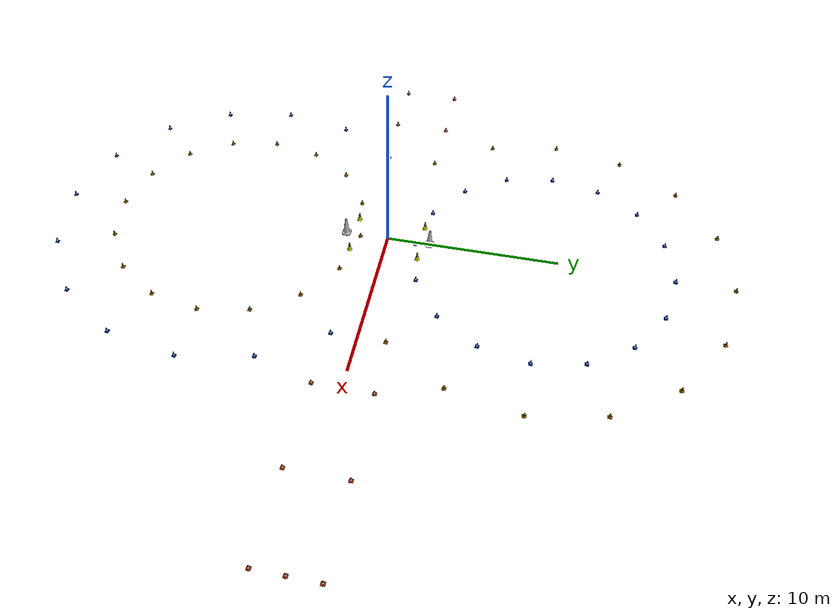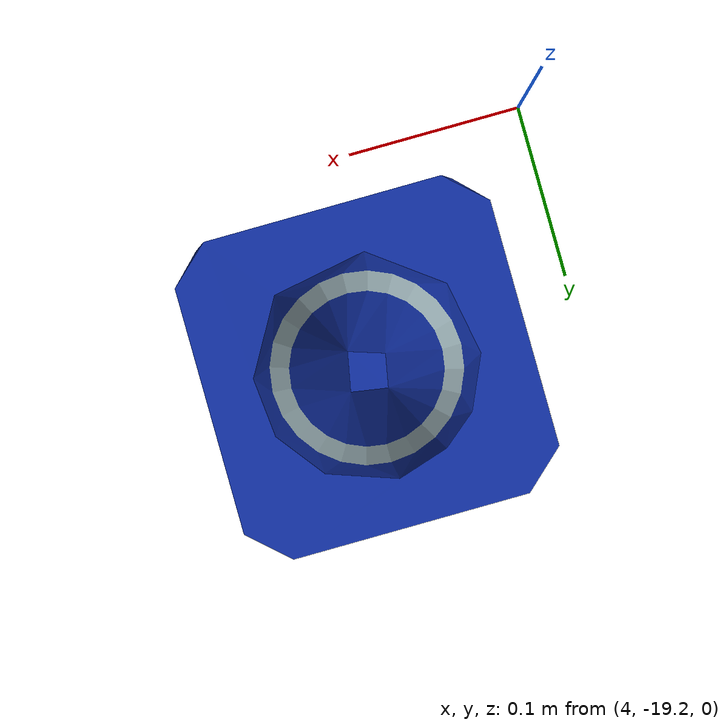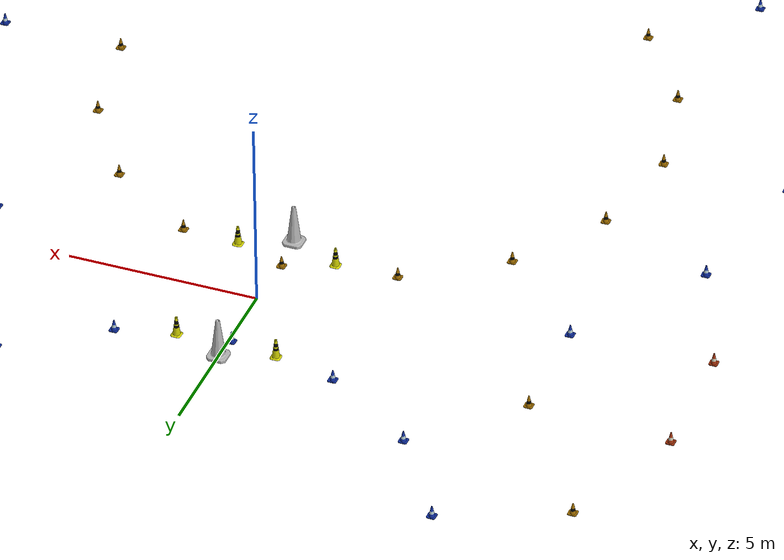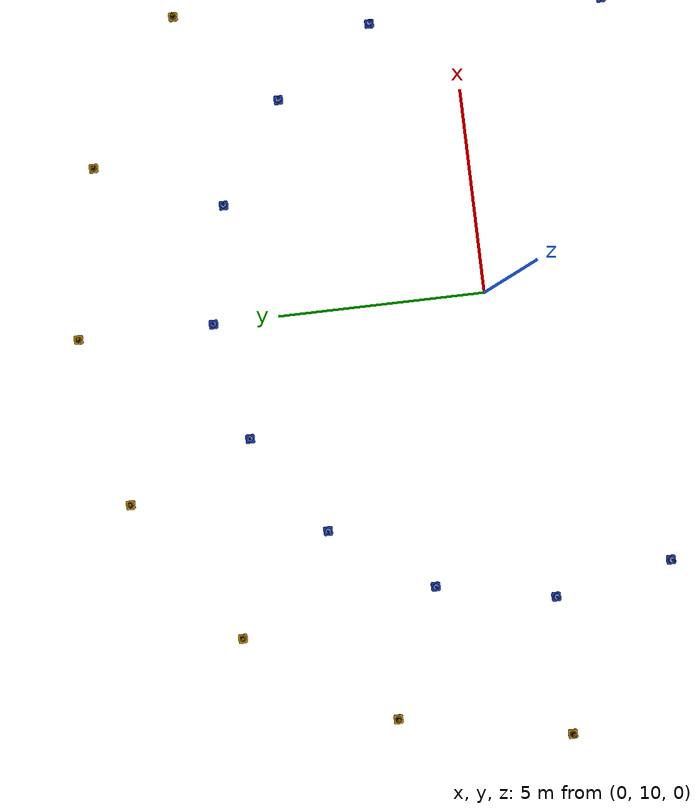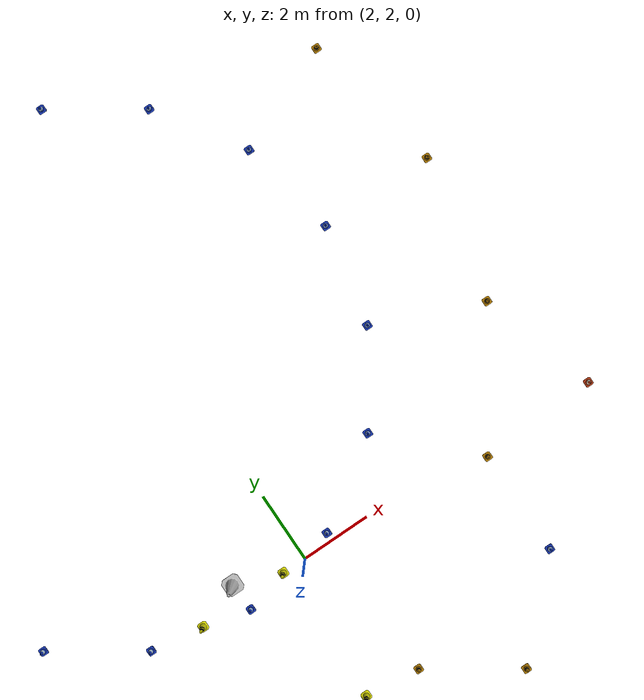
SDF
<sdf version="1.4">
  <model name="some track">
    <include>
      <uri>model://fssim_gazebo/models/cone_blue</uri>
      <pose>-0.0 1.6500000000000004 0 0 0 0</pose>
      <name>cone_right0</name>
    </include>
    <include>
      <uri>model://fssim_gazebo/models/cone_blue</uri>
      <pose>-2.860558656929046 2.2190004944781316 0 0 0 0</pose>
      <name>cone_right1</name>
    </include>
    <include>
      <uri>model://fssim_gazebo/models/cone_blue</uri>
      <pose>-5.285623189369442 3.839376810630557 0 0 0 0</pose>
      <name>cone_right2</name>
    </include>
    <include>
      <uri>model://fssim_gazebo/models/cone_blue</uri>
      <pose>-6.905999505521868 6.264441343070954 0 0 0 0</pose>
      <name>cone_right3</name>
    </include>
    <include>
      <uri>model://fssim_gazebo/models/cone_blue</uri>
      <pose>-7.475 9.125 0 0 0 0</pose>
      <name>cone_right4</name>
    </include>
    <include>
      <uri>model://fssim_gazebo/models/cone_blue</uri>
      <pose>-6.905999505521868 11.985558656929046 0 0 0 0</pose>
      <name>cone_right5</name>
    </include>
    <include>
      <uri>model://fssim_gazebo/models/cone_blue</uri>
      <pose>-5.285623189369443 14.410623189369442 0 0 0 0</pose>
      <name>cone_right6</name>
    </include>
    <include>
      <uri>model://fssim_gazebo/models/cone_blue</uri>
      <pose>-2.860558656929047 16.03099950552187 0 0 0 0</pose>
      <name>cone_right7</name>
    </include>
    <include>
      <uri>model://fssim_gazebo/models/cone_blue</uri>
      <pose>-9.154234823626465e-16 16.6 0 0 0 0</pose>
      <name>cone_right8</name>
    </include>
    <include>
      <uri>model://fssim_gazebo/models/cone_blue</uri>
      <pose>2.860558656929045 16.03099950552187 0 0 0 0</pose>
      <name>cone_right9</name>
    </include>
    <include>
      <uri>model://fssim_gazebo/models/cone_blue</uri>
      <pose>5.285623189369442 14.410623189369444 0 0 0 0</pose>
      <name>cone_right10</name>
    </include>
    <include>
      <uri>model://fssim_gazebo/models/cone_blue</uri>
      <pose>6.905999505521867 11.98555865692905 0 0 0 0</pose>
      <name>cone_right11</name>
    </include>
    <include>
      <uri>model://fssim_gazebo/models/cone_blue</uri>
      <pose>7.475 9.125000000000002 0 0 0 0</pose>
      <name>cone_right12</name>
    </include>
    <include>
      <uri>model://fssim_gazebo/models/cone_blue</uri>
      <pose>6.9059995055218675 6.264441343070953 0 0 0 0</pose>
      <name>cone_right13</name>
    </include>
    <include>
      <uri>model://fssim_gazebo/models/cone_blue</uri>
      <pose>5.285623189369444 3.839376810630559 0 0 0 0</pose>
      <name>cone_right14</name>
    </include>
    <include>
      <uri>model://fssim_gazebo/models/cone_blue</uri>
      <pose>2.8605586569290504 2.2190004944781334 0 0 0 0</pose>
      <name>cone_right15</name>
    </include>
    <include>
      <uri>model://fssim_gazebo/models/cone_blue</uri>
      <pose>7.619075567285049 -1.5059244327149495 0 0 0 0</pose>
      <name>cone_right16</name>
    </include>
    <include>
      <uri>model://fssim_gazebo/models/cone_blue</uri>
      <pose>9.954801962809116 -5.001586016266157 0 0 0 0</pose>
      <name>cone_right17</name>
    </include>
    <include>
      <uri>model://fssim_gazebo/models/cone_blue</uri>
      <pose>10.775 -9.125 0 0 0 0</pose>
      <name>cone_right18</name>
    </include>
    <include>
      <uri>model://fssim_gazebo/models/cone_blue</uri>
      <pose>9.954801962809116 -13.248413983733842 0 0 0 0</pose>
      <name>cone_right19</name>
    </include>
    <include>
      <uri>model://fssim_gazebo/models/cone_blue</uri>
      <pose>7.6190755672850505 -16.744075567285048 0 0 0 0</pose>
      <name>cone_right20</name>
    </include>
    <include>
      <uri>model://fssim_gazebo/models/cone_blue</uri>
      <pose>4.123413983733844 -19.079801962809114 0 0 0 0</pose>
      <name>cone_right21</name>
    </include>
    <include>
      <uri>model://fssim_gazebo/models/cone_blue</uri>
      <pose>1.3195569260812732e-15 -19.9 0 0 0 0</pose>
      <name>cone_right22</name>
    </include>
    <include>
      <uri>model://fssim_gazebo/models/cone_blue</uri>
      <pose>-4.123413983733841 -19.079801962809114 0 0 0 0</pose>
      <name>cone_right23</name>
    </include>
    <include>
      <uri>model://fssim_gazebo/models/cone_blue</uri>
      <pose>-7.619075567285049 -16.74407556728505 0 0 0 0</pose>
      <name>cone_right24</name>
    </include>
    <include>
      <uri>model://fssim_gazebo/models/cone_blue</uri>
      <pose>-9.954801962809112 -13.248413983733847 0 0 0 0</pose>
      <name>cone_right25</name>
    </include>
    <include>
      <uri>model://fssim_gazebo/models/cone_blue</uri>
      <pose>-10.775 -9.125000000000002 0 0 0 0</pose>
      <name>cone_right26</name>
    </include>
    <include>
      <uri>model://fssim_gazebo/models/cone_blue</uri>
      <pose>-9.954801962809114 -5.001586016266155 0 0 0 0</pose>
      <name>cone_right27</name>
    </include>
    <include>
      <uri>model://fssim_gazebo/models/cone_blue</uri>
      <pose>-7.619075567285051 -1.5059244327149521 0 0 0 0</pose>
      <name>cone_right28</name>
    </include>
    <include>
      <uri>model://fssim_gazebo/models/cone_yellow</uri>
      <pose>-7.619075567285049 1.5059244327149495 0 0 0 0</pose>
      <name>cone_left0</name>
    </include>
    <include>
      <uri>model://fssim_gazebo/models/cone_yellow</uri>
      <pose>-9.954801962809116 5.001586016266157 0 0 0 0</pose>
      <name>cone_left1</name>
    </include>
    <include>
      <uri>model://fssim_gazebo/models/cone_yellow</uri>
      <pose>-10.775 9.125 0 0 0 0</pose>
      <name>cone_left2</name>
    </include>
    <include>
      <uri>model://fssim_gazebo/models/cone_yellow</uri>
      <pose>-9.954801962809116 13.248413983733842 0 0 0 0</pose>
      <name>cone_left3</name>
    </include>
    <include>
      <uri>model://fssim_gazebo/models/cone_yellow</uri>
      <pose>-7.6190755672850505 16.744075567285048 0 0 0 0</pose>
      <name>cone_left4</name>
    </include>
    <include>
      <uri>model://fssim_gazebo/models/cone_yellow</uri>
      <pose>-4.123413983733844 19.079801962809114 0 0 0 0</pose>
      <name>cone_left5</name>
    </include>
    <include>
      <uri>model://fssim_gazebo/models/cone_yellow</uri>
      <pose>-1.3195569260812732e-15 19.9 0 0 0 0</pose>
      <name>cone_left6</name>
    </include>
    <include>
      <uri>model://fssim_gazebo/models/cone_yellow</uri>
      <pose>4.123413983733841 19.079801962809114 0 0 0 0</pose>
      <name>cone_left7</name>
    </include>
    <include>
      <uri>model://fssim_gazebo/models/cone_yellow</uri>
      <pose>7.619075567285049 16.74407556728505 0 0 0 0</pose>
      <name>cone_left8</name>
    </include>
    <include>
      <uri>model://fssim_gazebo/models/cone_yellow</uri>
      <pose>9.954801962809112 13.248413983733847 0 0 0 0</pose>
      <name>cone_left9</name>
    </include>
    <include>
      <uri>model://fssim_gazebo/models/cone_yellow</uri>
      <pose>10.775 9.125000000000002 0 0 0 0</pose>
      <name>cone_left10</name>
    </include>
    <include>
      <uri>model://fssim_gazebo/models/cone_yellow</uri>
      <pose>9.954801962809114 5.001586016266155 0 0 0 0</pose>
      <name>cone_left11</name>
    </include>
    <include>
      <uri>model://fssim_gazebo/models/cone_yellow</uri>
      <pose>7.619075567285051 1.5059244327149521 0 0 0 0</pose>
      <name>cone_left12</name>
    </include>
    <include>
      <uri>model://fssim_gazebo/models/cone_yellow</uri>
      <pose>0.0 -1.6500000000000004 0 0 0 0</pose>
      <name>cone_left13</name>
    </include>
    <include>
      <uri>model://fssim_gazebo/models/cone_yellow</uri>
      <pose>2.860558656929046 -2.2190004944781316 0 0 0 0</pose>
      <name>cone_left14</name>
    </include>
    <include>
      <uri>model://fssim_gazebo/models/cone_yellow</uri>
      <pose>5.285623189369442 -3.839376810630557 0 0 0 0</pose>
      <name>cone_left15</name>
    </include>
    <include>
      <uri>model://fssim_gazebo/models/cone_yellow</uri>
      <pose>6.905999505521868 -6.264441343070954 0 0 0 0</pose>
      <name>cone_left16</name>
    </include>
    <include>
      <uri>model://fssim_gazebo/models/cone_yellow</uri>
      <pose>7.475 -9.125 0 0 0 0</pose>
      <name>cone_left17</name>
    </include>
    <include>
      <uri>model://fssim_gazebo/models/cone_yellow</uri>
      <pose>6.905999505521868 -11.985558656929046 0 0 0 0</pose>
      <name>cone_left18</name>
    </include>
    <include>
      <uri>model://fssim_gazebo/models/cone_yellow</uri>
      <pose>5.285623189369443 -14.410623189369442 0 0 0 0</pose>
      <name>cone_left19</name>
    </include>
    <include>
      <uri>model://fssim_gazebo/models/cone_yellow</uri>
      <pose>2.860558656929047 -16.03099950552187 0 0 0 0</pose>
      <name>cone_left20</name>
    </include>
    <include>
      <uri>model://fssim_gazebo/models/cone_yellow</uri>
      <pose>9.154234823626465e-16 -16.6 0 0 0 0</pose>
      <name>cone_left21</name>
    </include>
    <include>
      <uri>model://fssim_gazebo/models/cone_yellow</uri>
      <pose>-2.860558656929045 -16.03099950552187 0 0 0 0</pose>
      <name>cone_left22</name>
    </include>
    <include>
      <uri>model://fssim_gazebo/models/cone_yellow</uri>
      <pose>-5.285623189369442 -14.410623189369444 0 0 0 0</pose>
      <name>cone_left23</name>
    </include>
    <include>
      <uri>model://fssim_gazebo/models/cone_yellow</uri>
      <pose>-6.905999505521867 -11.98555865692905 0 0 0 0</pose>
      <name>cone_left24</name>
    </include>
    <include>
      <uri>model://fssim_gazebo/models/cone_yellow</uri>
      <pose>-7.475 -9.125000000000002 0 0 0 0</pose>
      <name>cone_left25</name>
    </include>
    <include>
      <uri>model://fssim_gazebo/models/cone_yellow</uri>
      <pose>-6.9059995055218675 -6.264441343070953 0 0 0 0</pose>
      <name>cone_left26</name>
    </include>
    <include>
      <uri>model://fssim_gazebo/models/cone_yellow</uri>
      <pose>-5.285623189369444 -3.839376810630559 0 0 0 0</pose>
      <name>cone_left27</name>
    </include>
    <include>
      <uri>model://fssim_gazebo/models/cone_yellow</uri>
      <pose>-2.8605586569290504 -2.2190004944781334 0 0 0 0</pose>
      <name>cone_left28</name>
    </include>
    <include>
      <uri>model://fssim_gazebo/models/cone_orange</uri>
      <pose>-11.25 1.65 0 0 0 0</pose>
      <name>cone_orange0</name>
    </include>
    <include>
      <uri>model://fssim_gazebo/models/cone_orange</uri>
      <pose>-11.25 -1.65 0 0 0 0</pose>
      <name>cone_orange1</name>
    </include>
    <include>
      <uri>model://fssim_gazebo/models/cone_orange</uri>
      <pose>-15.0 1.65 0 0 0 0</pose>
      <name>cone_orange2</name>
    </include>
    <include>
      <uri>model://fssim_gazebo/models/cone_orange</uri>
      <pose>-15.0 -1.65 0 0 0 0</pose>
      <name>cone_orange3</name>
    </include>
    <include>
      <uri>model://fssim_gazebo/models/cone_orange</uri>
      <pose>11.0 1.65 0 0 0 0</pose>
      <name>cone_orange4</name>
    </include>
    <include>
      <uri>model://fssim_gazebo/models/cone_orange</uri>
      <pose>11.0 -1.65 0 0 0 0</pose>
      <name>cone_orange5</name>
    </include>
    <include>
      <uri>model://fssim_gazebo/models/cone_orange</uri>
      <pose>16.0 1.65 0 0 0 0</pose>
      <name>cone_orange6</name>
    </include>
    <include>
      <uri>model://fssim_gazebo/models/cone_orange</uri>
      <pose>16.0 -1.65 0 0 0 0</pose>
      <name>cone_orange7</name>
    </include>
    <include>
      <uri>model://fssim_gazebo/models/cone_orange</uri>
      <pose>21.0 1.65 0 0 0 0</pose>
      <name>cone_orange8</name>
    </include>
    <include>
      <uri>model://fssim_gazebo/models/cone_orange</uri>
      <pose>21.0 -1.65 0 0 0 0</pose>
      <name>cone_orange9</name>
    </include>
    <include>
      <uri>model://fssim_gazebo/models/cone_orange</uri>
      <pose>21.0 0.0 0 0 0 0</pose>
      <name>cone_orange10</name>
    </include>
    <include>
      <uri>model://fssim_gazebo/models/cone_orange</uri>
      <pose>21.0 1.65 0 0 0 0</pose>
      <name>cone_orange11</name>
    </include>
    <include>
      <uri>model://fssim_gazebo/models/cone_orange_big</uri>
      <pose>-1.3 2.0 0 0 0 0</pose>
      <name>cone_orange_big0</name>
    </include>
    <include>
      <uri>model://fssim_gazebo/models/cone_orange_big</uri>
      <pose>-1.3 -2.0 0 0 0 0</pose>
      <name>cone_orange_big1</name>
    </include>
    <include>
      <uri>model://fssim_gazebo/models/cone_orange_big</uri>
      <pose>1.3 2.0 0 0 0 0</pose>
      <name>cone_orange_big2</name>
    </include>
    <include>
      <uri>model://fssim_gazebo/models/cone_orange_big</uri>
      <pose>1.3 -2.0 0 0 0 0</pose>
      <name>cone_orange_big3</name>
    </include>
    <include>
      <uri>model://fssim_gazebo/models/time_keeping</uri>
      <pose>0.0 2.5 0 0 0 0</pose>
      <name>tk_device_0</name>
    </include>
    <include>
      <uri>model://fssim_gazebo/models/time_keeping</uri>
      <pose>0.0 -2.5 0 0 0 0</pose>
      <name>tk_device_1</name>
    </include>
  </model>
</sdf>

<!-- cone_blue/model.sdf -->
<sdf version='1.4'>
  <model name="cone_blue">
    <link name="link">
      <collision name="collision">
        <geometry>
          <mesh>
            <uri>model://fssim_gazebo/meshes/cone/cone_blue.dae</uri>
     	      <scale>1 1 1</scale>
          </mesh>
        </geometry>
      </collision>
      <visual name="visual">
        <geometry>
          <mesh>
            <uri>model://fssim_gazebo/meshes/cone/cone_blue.dae</uri>
            <scale>1 1 1</scale>
          </mesh>
        </geometry>
      </visual>
    </link>
  </model>
</sdf>

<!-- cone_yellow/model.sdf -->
<sdf version='1.4'>
  <model name="cone_yellow">
    <link name="link">
      <collision name="collision">
        <geometry>
          <mesh>
            <uri>model://fssim_gazebo/meshes/cone/cone_yellow.dae</uri>
     	      <scale>1 1 1</scale>
          </mesh>
        </geometry>
      </collision>
      <visual name="visual">
        <geometry>
          <mesh>
            <uri>model://fssim_gazebo/meshes/cone/cone_yellow.dae</uri>
            <scale>1 1 1</scale>
          </mesh>
        </geometry>
      </visual>
    </link>
  </model>
</sdf>

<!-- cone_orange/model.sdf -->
<sdf version='1.4'>
  <model name="cone_orange">
    <link name="link">
      <collision name="collision">
        <geometry>
          <mesh>
            <uri>model://fssim_gazebo/meshes/cone/cone_orange.dae</uri>
     	      <scale>1 1 1</scale>
          </mesh>
        </geometry>
      </collision>
      <visual name="visual">
        <geometry>
          <mesh>
            <uri>model://fssim_gazebo/meshes/cone/cone_orange.dae</uri>
            <scale>1 1 1</scale>
          </mesh>
        </geometry>
      </visual>
    </link>
  </model>
</sdf>

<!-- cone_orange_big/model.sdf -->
<sdf version='1.4'>
  <model name="cone_orange_big">
    <link name="link">
      <collision name="collision">
        <geometry>
          <mesh>
            <uri>model://fssim_gazebo/meshes/cone/cone_orange_big.dae</uri>
     	      <scale>1 1 1</scale>
          </mesh>
        </geometry>
      </collision>
      <visual name="visual">
        <geometry>
          <mesh>
            <uri>model://fssim_gazebo/meshes/cone/cone_orange_big.dae</uri>
            <scale>1 1 1</scale>
          </mesh>
        </geometry>
      </visual>
    </link>
  </model>
</sdf>

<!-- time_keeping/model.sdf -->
<sdf version="1.5">
  <model name="Time Keeping Device">
    <link name="link">
      <collision name="collision">
        <geometry>
          <mesh>
            <scale>10 10 10</scale>
            <uri>model://construction_cone/meshes/construction_cone.dae</uri>
          </mesh>
        </geometry>
      </collision>
      <visual name="visual">
        <geometry>
          <mesh>
            <scale>10 10 10</scale>
            <uri>model://construction_cone/meshes/construction_cone.dae</uri>
          </mesh>
        </geometry>
      </visual>
    </link>
  </model>
</sdf>
